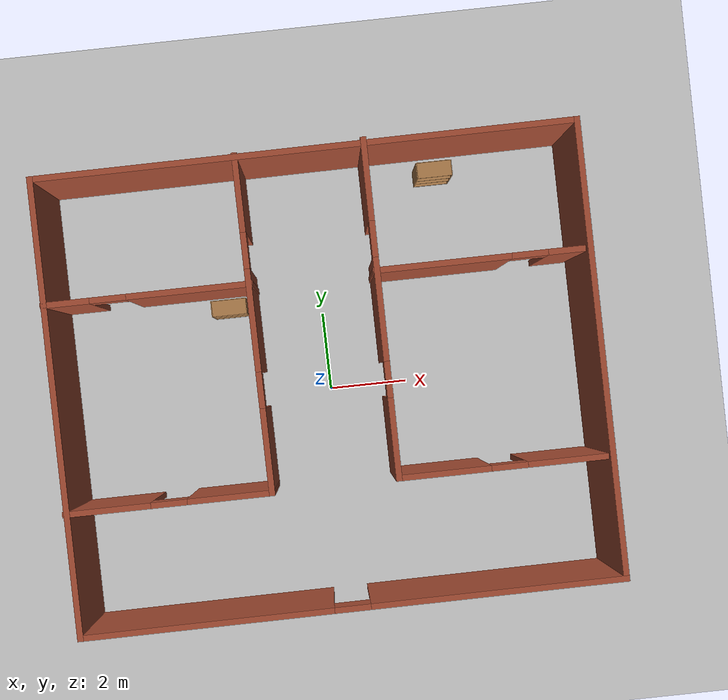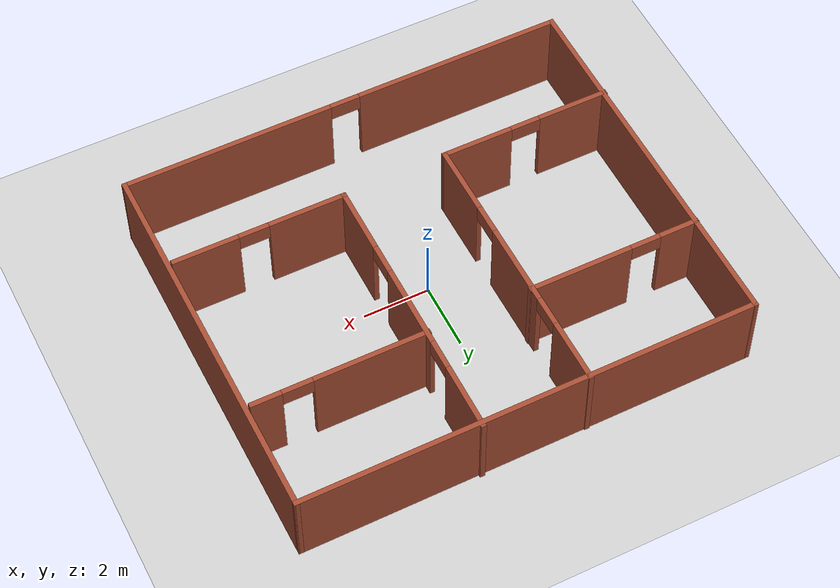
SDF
<sdf version="1.7">
 <world name="default">
  <light name="sun" type="directional">
   <pose>0 0 10 0 -0 0</pose>
   <diffuse>0.8 0.8 0.8 1</diffuse>
   <specular>0.2 0.2 0.2 1</specular>
   <attenuation>
    <range>1000</range>
    <constant>0.9</constant>
    <linear>0.01</linear>
    <quadratic>0.001</quadratic>
   </attenuation>
   <direction>-0.5 0.1 -0.9</direction>
   <spot><inner_angle>0</inner_angle><outer_angle>0</outer_angle><falloff>0</falloff></spot>
  </light>
  <model name="ground_plane">
   <static>1</static>
   <link name="link">
    <collision name="collision">
     <geometry><plane><normal>0 0 1</normal><size>100 100</size></plane></geometry>
     <surface><friction><ode><mu>100</mu><mu2>50</mu2></ode></friction></surface>
    </collision>
    <visual name="visual">
     <cast_shadows>0</cast_shadows>
     <geometry><plane><normal>0 0 1</normal><size>100 100</size></plane></geometry>
     <material>
      <script><uri>file://media/materials/scripts/gazebo.material</uri><name>Gazebo/Grey</name></script>
     </material>
    </visual>
   </link>
  </model>
  <gravity>0 0 -9.8</gravity>
  <magnetic_field>6e-06 2.3e-05 -4.2e-05</magnetic_field>
  <atmosphere type="adiabatic"/>
  <physics type="ode">
   <max_step_size>0.001</max_step_size>
   <real_time_factor>1</real_time_factor>
   <real_time_update_rate>1000</real_time_update_rate>
  </physics>
  <scene><ambient>0.4 0.4 0.4 1</ambient><background>0.7 0.7 0.7 1</background><shadows>1</shadows></scene>
  <audio><device>default</device></audio>
  <spherical_coordinates>
   <surface_model>EARTH_WGS84</surface_model>
   <latitude_deg>0</latitude_deg>
   <longitude_deg>0</longitude_deg>
   <elevation>0</elevation>
   <heading_deg>0</heading_deg>
  </spherical_coordinates>
  <model name="my_floor">
   <pose>-0.05757 0.273351 0 0 -0 0</pose>
   <link name="Wall_0">
    <collision name="Wall_0_Collision">
     <geometry><box><size>11.4818 0.15 2.5</size></box></geometry>
     <pose>0 0 1.25 0 -0 0</pose>
    </collision>
    <visual name="Wall_0_Visual">
     <pose>0 0 1.25 0 -0 0</pose>
     <geometry><box><size>11.4818 0.15 2.5</size></box></geometry>
     <material>
      <script><uri>file://media/materials/scripts/gazebo.material</uri><name>Gazebo/Bricks</name></script>
      <ambient>1 1 1 1</ambient>
     </material>
     <meta><layer>0</layer></meta>
    </visual>
    <pose>-6.74312 -0.053025 0 0 -0 -1.5661</pose>
   </link>
   <link name="Wall_1">
    <pose>0.026628 -5.69227 0 0 -0 0.003945</pose>
    <visual name="Wall_1_Visual_0">
     <pose>-3.64129 0 1.25 0 -0 0</pose>
     <geometry><box><size>6.35383 0.15 2.5</size></box></geometry>
     <material>
      <script><uri>file://media/materials/scripts/gazebo.material</uri><name>Gazebo/Bricks</name></script>
      <ambient>1 1 1 1</ambient>
     </material>
     <meta><layer>0</layer></meta>
    </visual>
    <collision name="Wall_1_Collision_0">
     <geometry><box><size>6.35383 0.15 2.5</size></box></geometry>
     <pose>-3.64129 0 1.25 0 -0 0</pose>
    </collision>
    <visual name="Wall_1_Visual_1">
     <pose>3.62691 0 1.25 0 -0 0</pose>
     <geometry><box><size>6.38258 0.15 2.5</size></box></geometry>
     <material>
      <script><uri>file://media/materials/scripts/gazebo.material</uri><name>Gazebo/Bricks</name></script>
      <ambient>1 1 1 1</ambient>
     </material>
     <meta><layer>0</layer></meta>
    </visual>
    <collision name="Wall_1_Collision_1">
     <geometry><box><size>6.38258 0.15 2.5</size></box></geometry>
     <pose>3.62691 0 1.25 0 -0 0</pose>
    </collision>
    <visual name="Wall_1_Visual_2">
     <pose>-0.014373 0 2.25 0 -0 0</pose>
     <geometry><box><size>0.9 0.15 0.5</size></box></geometry>
     <material>
      <script><uri>file://media/materials/scripts/gazebo.material</uri><name>Gazebo/Bricks</name></script>
      <ambient>1 1 1 1</ambient>
     </material>
     <meta><layer>0</layer></meta>
    </visual>
    <collision name="Wall_1_Collision_2">
     <geometry><box><size>0.9 0.15 0.5</size></box></geometry>
     <pose>-0.014373 0 2.25 0 -0 0</pose>
    </collision>
   </link>
   <link name="Wall_10">
    <pose>1.47634 1.54422 0 0 -0 -1.5708</pose>
    <visual name="Wall_10_Visual_0">
     <pose>-3.21686 0 1.25 0 -0 0</pose>
     <geometry><box><size>2.06627 0.15 2.5</size></box></geometry>
     <material>
      <script><uri>file://media/materials/scripts/gazebo.material</uri><name>Gazebo/Bricks</name></script>
      <ambient>1 1 1 1</ambient>
     </material>
     <meta><layer>0</layer></meta>
    </visual>
    <collision name="Wall_10_Collision_0">
     <geometry><box><size>2.06627 0.15 2.5</size></box></geometry>
     <pose>-3.21686 0 1.25 0 -0 0</pose>
    </collision>
    <visual name="Wall_10_Visual_1">
     <pose>0.001065 0 1.25 0 -0 0</pose>
     <geometry><box><size>2.56959 0.15 2.5</size></box></geometry>
     <material>
      <script><uri>file://media/materials/scripts/gazebo.material</uri><name>Gazebo/Bricks</name></script>
      <ambient>1 1 1 1</ambient>
     </material>
     <meta><layer>0</layer></meta>
    </visual>
    <collision name="Wall_10_Collision_1">
     <geometry><box><size>2.56959 0.15 2.5</size></box></geometry>
     <pose>0.001065 0 1.25 0 -0 0</pose>
    </collision>
    <visual name="Wall_10_Visual_2">
     <pose>3.21793 0 1.25 0 -0 0</pose>
     <geometry><box><size>2.06414 0.15 2.5</size></box></geometry>
     <material>
      <script><uri>file://media/materials/scripts/gazebo.material</uri><name>Gazebo/Bricks</name></script>
      <ambient>1 1 1 1</ambient>
     </material>
     <meta><layer>0</layer></meta>
    </visual>
    <collision name="Wall_10_Collision_2">
     <geometry><box><size>2.06414 0.15 2.5</size></box></geometry>
     <pose>3.21793 0 1.25 0 -0 0</pose>
    </collision>
    <visual name="Wall_10_Visual_3">
     <pose>-1.73373 0 2.25 0 -0 0</pose>
     <geometry><box><size>0.9 0.15 0.5</size></box></geometry>
     <material>
      <script><uri>file://media/materials/scripts/gazebo.material</uri><name>Gazebo/Bricks</name></script>
      <ambient>1 1 1 1</ambient>
     </material>
     <meta><layer>0</layer></meta>
    </visual>
    <collision name="Wall_10_Collision_3">
     <geometry><box><size>0.9 0.15 0.5</size></box></geometry>
     <pose>-1.73373 0 2.25 0 -0 0</pose>
    </collision>
    <visual name="Wall_10_Visual_4">
     <pose>1.73586 0 2.25 0 -0 0</pose>
     <geometry><box><size>0.9 0.15 0.5</size></box></geometry>
     <material>
      <script><uri>file://media/materials/scripts/gazebo.material</uri><name>Gazebo/Bricks</name></script>
      <ambient>1 1 1 1</ambient>
     </material>
     <meta><layer>0</layer></meta>
    </visual>
    <collision name="Wall_10_Collision_4">
     <geometry><box><size>0.9 0.15 0.5</size></box></geometry>
     <pose>1.73586 0 2.25 0 -0 0</pose>
    </collision>
   </link>
   <link name="Wall_11">
    <pose>4.02634 -2.63078 0 0 -0 0</pose>
    <visual name="Wall_11_Visual_0">
     <pose>-1.44416 0 1.25 0 -0 0</pose>
     <geometry><box><size>2.36168 0.15 2.5</size></box></geometry>
     <material>
      <script><uri>file://media/materials/scripts/gazebo.material</uri><name>Gazebo/Bricks</name></script>
      <ambient>1 1 1 1</ambient>
     </material>
     <meta><layer>0</layer></meta>
    </visual>
    <collision name="Wall_11_Collision_0">
     <geometry><box><size>2.36168 0.15 2.5</size></box></geometry>
     <pose>-1.44416 0 1.25 0 -0 0</pose>
    </collision>
    <visual name="Wall_11_Visual_1">
     <pose>1.63084 0 1.25 0 -0 0</pose>
     <geometry><box><size>1.98832 0.15 2.5</size></box></geometry>
     <material>
      <script><uri>file://media/materials/scripts/gazebo.material</uri><name>Gazebo/Bricks</name></script>
      <ambient>1 1 1 1</ambient>
     </material>
     <meta><layer>0</layer></meta>
    </visual>
    <collision name="Wall_11_Collision_1">
     <geometry><box><size>1.98832 0.15 2.5</size></box></geometry>
     <pose>1.63084 0 1.25 0 -0 0</pose>
    </collision>
    <visual name="Wall_11_Visual_2">
     <pose>0.186681 0 2.25 0 -0 0</pose>
     <geometry><box><size>0.9 0.15 0.5</size></box></geometry>
     <material>
      <script><uri>file://media/materials/scripts/gazebo.material</uri><name>Gazebo/Bricks</name></script>
      <ambient>1 1 1 1</ambient>
     </material>
     <meta><layer>0</layer></meta>
    </visual>
    <collision name="Wall_11_Collision_2">
     <geometry><box><size>0.9 0.15 0.5</size></box></geometry>
     <pose>0.186681 0 2.25 0 -0 0</pose>
    </collision>
   </link>
   <link name="Wall_13">
    <pose>3.99974 2.50059 0 0 -0 0</pose>
    <visual name="Wall_13_Visual_0">
     <pose>-0.910421 0 1.25 0 -0 0</pose>
     <geometry><box><size>3.42916 0.15 2.5</size></box></geometry>
     <material>
      <script><uri>file://media/materials/scripts/gazebo.material</uri><name>Gazebo/Bricks</name></script>
      <ambient>1 1 1 1</ambient>
     </material>
     <meta><layer>0</layer></meta>
    </visual>
    <collision name="Wall_13_Collision_0">
     <geometry><box><size>3.42916 0.15 2.5</size></box></geometry>
     <pose>-0.910421 0 1.25 0 -0 0</pose>
    </collision>
    <visual name="Wall_13_Visual_1">
     <pose>2.16458 0 1.25 0 -0 0</pose>
     <geometry><box><size>0.920842 0.15 2.5</size></box></geometry>
     <material>
      <script><uri>file://media/materials/scripts/gazebo.material</uri><name>Gazebo/Bricks</name></script>
      <ambient>1 1 1 1</ambient>
     </material>
     <meta><layer>0</layer></meta>
    </visual>
    <collision name="Wall_13_Collision_1">
     <geometry><box><size>0.920842 0.15 2.5</size></box></geometry>
     <pose>2.16458 0 1.25 0 -0 0</pose>
    </collision>
    <visual name="Wall_13_Visual_2">
     <pose>1.25416 0 2.25 0 -0 0</pose>
     <geometry><box><size>0.9 0.15 0.5</size></box></geometry>
     <material>
      <script><uri>file://media/materials/scripts/gazebo.material</uri><name>Gazebo/Bricks</name></script>
      <ambient>1 1 1 1</ambient>
     </material>
     <meta><layer>0</layer></meta>
    </visual>
    <collision name="Wall_13_Collision_2">
     <geometry><box><size>0.9 0.15 0.5</size></box></geometry>
     <pose>1.25416 0 2.25 0 -0 0</pose>
    </collision>
   </link>
   <link name="Wall_2">
    <collision name="Wall_2_Collision">
     <geometry><box><size>11.4818 0.15 2.5</size></box></geometry>
     <pose>0 0 1.25 0 -0 0</pose>
    </collision>
    <visual name="Wall_2_Visual">
     <pose>0 0 1.25 0 -0 0</pose>
     <geometry><box><size>11.4818 0.15 2.5</size></box></geometry>
     <material>
      <script><uri>file://media/materials/scripts/gazebo.material</uri><name>Gazebo/Bricks</name></script>
      <ambient>1 1 1 1</ambient>
     </material>
     <meta><layer>0</layer></meta>
    </visual>
    <pose>6.75648 0.000175 0 0 -0 1.57314</pose>
   </link>
   <link name="Wall_3">
    <collision name="Wall_3_Collision">
     <geometry><box><size>13.663 0.15 2.5</size></box></geometry>
     <pose>0 0 1.25 0 -0 0</pose>
    </collision>
    <visual name="Wall_3_Visual">
     <pose>0 0 1.25 0 -0 0</pose>
     <geometry><box><size>13.663 0.15 2.5</size></box></geometry>
     <material>
      <script><uri>file://media/materials/scripts/gazebo.material</uri><name>Gazebo/Bricks</name></script>
      <ambient>1 1 1 1</ambient>
     </material>
     <meta><layer>0</layer></meta>
    </visual>
    <pose>-0.013272 5.63942 0 0 -0 -3.13766</pose>
   </link>
   <link name="Wall_5">
    <pose>-1.68908 1.50309 0 0 -0 -1.56441</pose>
    <visual name="Wall_5_Visual_0">
     <pose>-3.25495 0 1.25 0 -0 0</pose>
     <geometry><box><size>1.966 0.15 2.5</size></box></geometry>
     <material>
      <script><uri>file://media/materials/scripts/gazebo.material</uri><name>Gazebo/Bricks</name></script>
      <ambient>1 1 1 1</ambient>
     </material>
     <meta><layer>0</layer></meta>
    </visual>
    <collision name="Wall_5_Collision_0">
     <geometry><box><size>1.966 0.15 2.5</size></box></geometry>
     <pose>-3.25495 0 1.25 0 -0 0</pose>
    </collision>
    <visual name="Wall_5_Visual_1">
     <pose>-0.098458 0 1.25 0 -0 0</pose>
     <geometry><box><size>2.54698 0.15 2.5</size></box></geometry>
     <material>
      <script><uri>file://media/materials/scripts/gazebo.material</uri><name>Gazebo/Bricks</name></script>
      <ambient>1 1 1 1</ambient>
     </material>
     <meta><layer>0</layer></meta>
    </visual>
    <collision name="Wall_5_Collision_1">
     <geometry><box><size>2.54698 0.15 2.5</size></box></geometry>
     <pose>-0.098458 0 1.25 0 -0 0</pose>
    </collision>
    <visual name="Wall_5_Visual_2">
     <pose>3.15649 0 1.25 0 -0 0</pose>
     <geometry><box><size>2.16292 0.15 2.5</size></box></geometry>
     <material>
      <script><uri>file://media/materials/scripts/gazebo.material</uri><name>Gazebo/Bricks</name></script>
      <ambient>1 1 1 1</ambient>
     </material>
     <meta><layer>0</layer></meta>
    </visual>
    <collision name="Wall_5_Collision_2">
     <geometry><box><size>2.16292 0.15 2.5</size></box></geometry>
     <pose>3.15649 0 1.25 0 -0 0</pose>
    </collision>
    <visual name="Wall_5_Visual_3">
     <pose>-1.82195 0 2.25 0 -0 0</pose>
     <geometry><box><size>0.9 0.15 0.5</size></box></geometry>
     <material>
      <script><uri>file://media/materials/scripts/gazebo.material</uri><name>Gazebo/Bricks</name></script>
      <ambient>1 1 1 1</ambient>
     </material>
     <meta><layer>0</layer></meta>
    </visual>
    <collision name="Wall_5_Collision_3">
     <geometry><box><size>0.9 0.15 0.5</size></box></geometry>
     <pose>-1.82195 0 2.25 0 -0 0</pose>
    </collision>
    <visual name="Wall_5_Visual_4">
     <pose>1.62503 0 2.25 0 -0 0</pose>
     <geometry><box><size>0.9 0.15 0.5</size></box></geometry>
     <material>
      <script><uri>file://media/materials/scripts/gazebo.material</uri><name>Gazebo/Bricks</name></script>
      <ambient>1 1 1 1</ambient>
     </material>
     <meta><layer>0</layer></meta>
    </visual>
    <collision name="Wall_5_Collision_4">
     <geometry><box><size>0.9 0.15 0.5</size></box></geometry>
     <pose>1.62503 0 2.25 0 -0 0</pose>
    </collision>
   </link>
   <link name="Wall_6">
    <pose>-4.21248 -2.65984 0 0 -0 3.14159</pose>
    <visual name="Wall_6_Visual_0">
     <pose>-1.54048 0 1.25 0 -0 0</pose>
     <geometry><box><size>2.16904 0.15 2.5</size></box></geometry>
     <material>
      <script><uri>file://media/materials/scripts/gazebo.material</uri><name>Gazebo/Bricks</name></script>
      <ambient>1 1 1 1</ambient>
     </material>
     <meta><layer>0</layer></meta>
    </visual>
    <collision name="Wall_6_Collision_0">
     <geometry><box><size>2.16904 0.15 2.5</size></box></geometry>
     <pose>-1.54048 0 1.25 0 -0 0</pose>
    </collision>
    <visual name="Wall_6_Visual_1">
     <pose>1.53452 0 1.25 0 -0 0</pose>
     <geometry><box><size>2.18096 0.15 2.5</size></box></geometry>
     <material>
      <script><uri>file://media/materials/scripts/gazebo.material</uri><name>Gazebo/Bricks</name></script>
      <ambient>1 1 1 1</ambient>
     </material>
     <meta><layer>0</layer></meta>
    </visual>
    <collision name="Wall_6_Collision_1">
     <geometry><box><size>2.18096 0.15 2.5</size></box></geometry>
     <pose>1.53452 0 1.25 0 -0 0</pose>
    </collision>
    <visual name="Wall_6_Visual_2">
     <pose>-0.005963 0 2.25 0 -0 0</pose>
     <geometry><box><size>0.9 0.15 0.5</size></box></geometry>
     <material>
      <script><uri>file://media/materials/scripts/gazebo.material</uri><name>Gazebo/Bricks</name></script>
      <ambient>1 1 1 1</ambient>
     </material>
     <meta><layer>0</layer></meta>
    </visual>
    <collision name="Wall_6_Collision_2">
     <geometry><box><size>0.9 0.15 0.5</size></box></geometry>
     <pose>-0.005963 0 2.25 0 -0 0</pose>
    </collision>
   </link>
   <link name="Wall_8">
    <pose>-4.21972 2.50059 0 0 -0 0</pose>
    <visual name="Wall_8_Visual_0">
     <pose>-2.01664 0 1.25 0 -0 0</pose>
     <geometry><box><size>1.21672 0.15 2.5</size></box></geometry>
     <material>
      <script><uri>file://media/materials/scripts/gazebo.material</uri><name>Gazebo/Bricks</name></script>
      <ambient>1 1 1 1</ambient>
     </material>
     <meta><layer>0</layer></meta>
    </visual>
    <collision name="Wall_8_Collision_0">
     <geometry><box><size>1.21672 0.15 2.5</size></box></geometry>
     <pose>-2.01664 0 1.25 0 -0 0</pose>
    </collision>
    <visual name="Wall_8_Visual_1">
     <pose>1.05836 0 1.25 0 -0 0</pose>
     <geometry><box><size>3.13328 0.15 2.5</size></box></geometry>
     <material>
      <script><uri>file://media/materials/scripts/gazebo.material</uri><name>Gazebo/Bricks</name></script>
      <ambient>1 1 1 1</ambient>
     </material>
     <meta><layer>0</layer></meta>
    </visual>
    <collision name="Wall_8_Collision_1">
     <geometry><box><size>3.13328 0.15 2.5</size></box></geometry>
     <pose>1.05836 0 1.25 0 -0 0</pose>
    </collision>
    <visual name="Wall_8_Visual_2">
     <pose>-0.958284 0 2.25 0 -0 0</pose>
     <geometry><box><size>0.9 0.15 0.5</size></box></geometry>
     <material>
      <script><uri>file://media/materials/scripts/gazebo.material</uri><name>Gazebo/Bricks</name></script>
      <ambient>1 1 1 1</ambient>
     </material>
     <meta><layer>0</layer></meta>
    </visual>
    <collision name="Wall_8_Collision_2">
     <geometry><box><size>0.9 0.15 0.5</size></box></geometry>
     <pose>-0.958284 0 2.25 0 -0 0</pose>
    </collision>
   </link>
   <static>1</static>
  </model>
  <model name="bookshelf">
   <static>1</static>
   <link name="link">
    <inertial><mass>1</mass></inertial>
    <collision name="back">
     <pose>0 0.005 0.6 0 -0 0</pose>
     <geometry><box><size>0.9 0.01 1.2</size></box></geometry>
    </collision>
    <visual name="visual1">
     <pose>0 0.005 0.6 0 -0 0</pose>
     <geometry><box><size>0.9 0.01 1.2</size></box></geometry>
     <material>
      <script><uri>file://media/materials/scripts/gazebo.material</uri><name>Gazebo/Wood</name></script>
     </material>
    </visual>
    <collision name="left_side">
     <pose>0.45 -0.195 0.6 0 -0 0</pose>
     <geometry><box><size>0.02 0.4 1.2</size></box></geometry>
    </collision>
    <visual name="visual2">
     <pose>0.45 -0.195 0.6 0 -0 0</pose>
     <geometry><box><size>0.02 0.4 1.2</size></box></geometry>
     <material>
      <script><uri>file://media/materials/scripts/gazebo.material</uri><name>Gazebo/Wood</name></script>
     </material>
    </visual>
    <collision name="right_side">
     <pose>-0.45 -0.195 0.6 0 -0 0</pose>
     <geometry><box><size>0.02 0.4 1.2</size></box></geometry>
    </collision>
    <visual name="visual3">
     <pose>-0.45 -0.195 0.6 0 -0 0</pose>
     <geometry><box><size>0.02 0.4 1.2</size></box></geometry>
     <material>
      <script><uri>file://media/materials/scripts/gazebo.material</uri><name>Gazebo/Wood</name></script>
     </material>
    </visual>
    <collision name="bottom">
     <pose>0 -0.195 0.03 0 -0 0</pose>
     <geometry><box><size>0.88 0.4 0.06</size></box></geometry>
    </collision>
    <visual name="visual4">
     <pose>0 -0.195 0.03 0 -0 0</pose>
     <geometry><box><size>0.88 0.4 0.06</size></box></geometry>
     <material>
      <script><uri>file://media/materials/scripts/gazebo.material</uri><name>Gazebo/Wood</name></script>
     </material>
    </visual>
    <collision name="top">
     <pose>0 -0.195 1.19 0 -0 0</pose>
     <geometry><box><size>0.88 0.4 0.02</size></box></geometry>
    </collision>
    <visual name="visual5">
     <pose>0 -0.195 1.19 0 -0 0</pose>
     <geometry><box><size>0.88 0.4 0.02</size></box></geometry>
     <material>
      <script><uri>file://media/materials/scripts/gazebo.material</uri><name>Gazebo/Wood</name></script>
     </material>
    </visual>
    <collision name="low_shelf">
     <pose>0 -0.195 0.43 0 -0 0</pose>
     <geometry><box><size>0.88 0.4 0.02</size></box></geometry>
    </collision>
    <visual name="visual6">
     <pose>0 -0.195 0.43 0 -0 0</pose>
     <geometry><box><size>0.88 0.4 0.02</size></box></geometry>
     <material>
      <script><uri>file://media/materials/scripts/gazebo.material</uri><name>Gazebo/Wood</name></script>
     </material>
    </visual>
    <collision name="high_shelf">
     <pose>0 -0.195 0.8 0 -0 0</pose>
     <geometry><box><size>0.88 0.4 0.02</size></box></geometry>
    </collision>
    <visual name="visual7">
     <pose>0 -0.195 0.8 0 -0 0</pose>
     <geometry><box><size>0.88 0.4 0.02</size></box></geometry>
     <material>
      <script><uri>file://media/materials/scripts/gazebo.material</uri><name>Gazebo/Wood</name></script>
     </material>
    </visual>
   </link>
   <pose>-2.40685 2.55087 0 0 -0 0</pose>
  </model>
  <model name="bookshelf_0">
   <static>1</static>
   <link name="link">
    <inertial><mass>1</mass></inertial>
    <collision name="back">
     <pose>0 0.005 0.6 0 -0 0</pose>
     <geometry><box><size>0.9 0.01 1.2</size></box></geometry>
    </collision>
    <visual name="visual1">
     <pose>0 0.005 0.6 0 -0 0</pose>
     <geometry><box><size>0.9 0.01 1.2</size></box></geometry>
     <material>
      <script><uri>file://media/materials/scripts/gazebo.material</uri><name>Gazebo/Wood</name></script>
     </material>
    </visual>
    <collision name="left_side">
     <pose>0.45 -0.195 0.6 0 -0 0</pose>
     <geometry><box><size>0.02 0.4 1.2</size></box></geometry>
    </collision>
    <visual name="visual2">
     <pose>0.45 -0.195 0.6 0 -0 0</pose>
     <geometry><box><size>0.02 0.4 1.2</size></box></geometry>
     <material>
      <script><uri>file://media/materials/scripts/gazebo.material</uri><name>Gazebo/Wood</name></script>
     </material>
    </visual>
    <collision name="right_side">
     <pose>-0.45 -0.195 0.6 0 -0 0</pose>
     <geometry><box><size>0.02 0.4 1.2</size></box></geometry>
    </collision>
    <visual name="visual3">
     <pose>-0.45 -0.195 0.6 0 -0 0</pose>
     <geometry><box><size>0.02 0.4 1.2</size></box></geometry>
     <material>
      <script><uri>file://media/materials/scripts/gazebo.material</uri><name>Gazebo/Wood</name></script>
     </material>
    </visual>
    <collision name="bottom">
     <pose>0 -0.195 0.03 0 -0 0</pose>
     <geometry><box><size>0.88 0.4 0.06</size></box></geometry>
    </collision>
    <visual name="visual4">
     <pose>0 -0.195 0.03 0 -0 0</pose>
     <geometry><box><size>0.88 0.4 0.06</size></box></geometry>
     <material>
      <script><uri>file://media/materials/scripts/gazebo.material</uri><name>Gazebo/Wood</name></script>
     </material>
    </visual>
    <collision name="top">
     <pose>0 -0.195 1.19 0 -0 0</pose>
     <geometry><box><size>0.88 0.4 0.02</size></box></geometry>
    </collision>
    <visual name="visual5">
     <pose>0 -0.195 1.19 0 -0 0</pose>
     <geometry><box><size>0.88 0.4 0.02</size></box></geometry>
     <material>
      <script><uri>file://media/materials/scripts/gazebo.material</uri><name>Gazebo/Wood</name></script>
     </material>
    </visual>
    <collision name="low_shelf">
     <pose>0 -0.195 0.43 0 -0 0</pose>
     <geometry><box><size>0.88 0.4 0.02</size></box></geometry>
    </collision>
    <visual name="visual6">
     <pose>0 -0.195 0.43 0 -0 0</pose>
     <geometry><box><size>0.88 0.4 0.02</size></box></geometry>
     <material>
      <script><uri>file://media/materials/scripts/gazebo.material</uri><name>Gazebo/Wood</name></script>
     </material>
    </visual>
    <collision name="high_shelf">
     <pose>0 -0.195 0.8 0 -0 0</pose>
     <geometry><box><size>0.88 0.4 0.02</size></box></geometry>
    </collision>
    <visual name="visual7">
     <pose>0 -0.195 0.8 0 -0 0</pose>
     <geometry><box><size>0.88 0.4 0.02</size></box></geometry>
     <material>
      <script><uri>file://media/materials/scripts/gazebo.material</uri><name>Gazebo/Wood</name></script>
     </material>
    </visual>
   </link>
   <pose>3.23454 5.53704 0 0 -0 0</pose>
  </model>
 </world>
</sdf>
